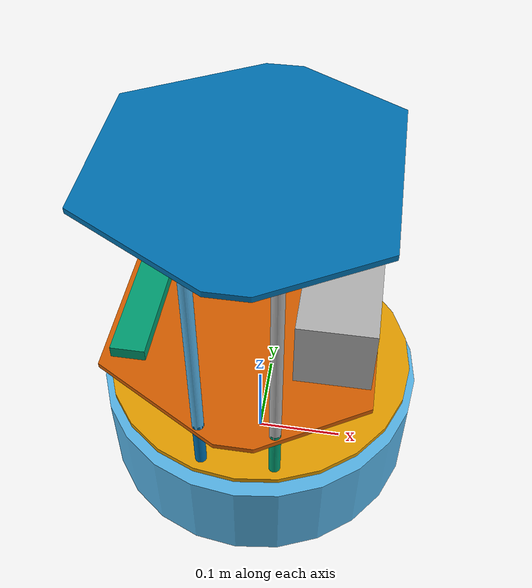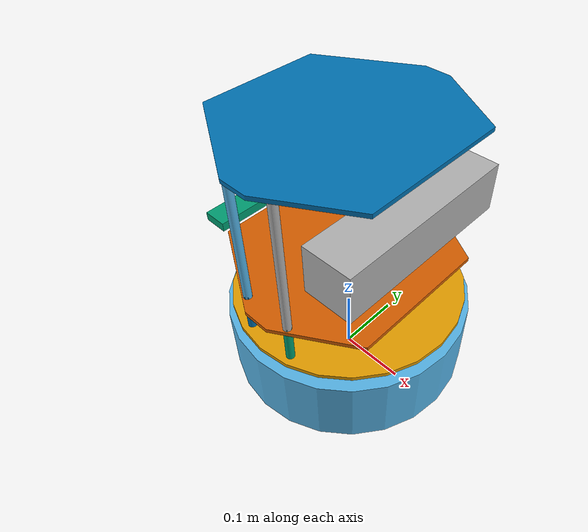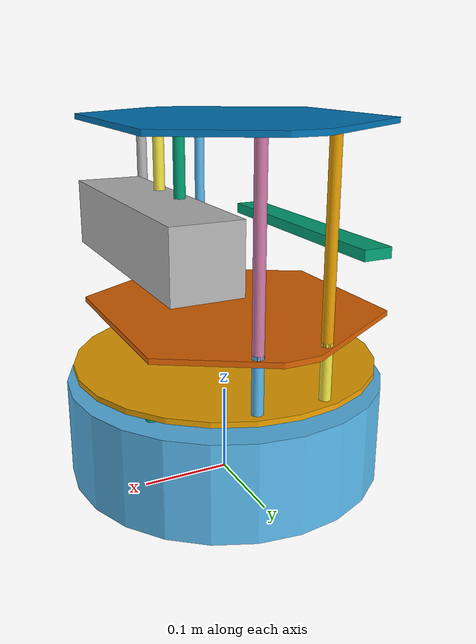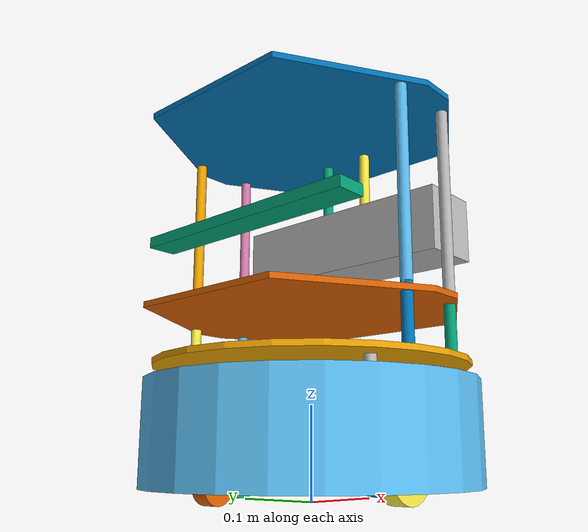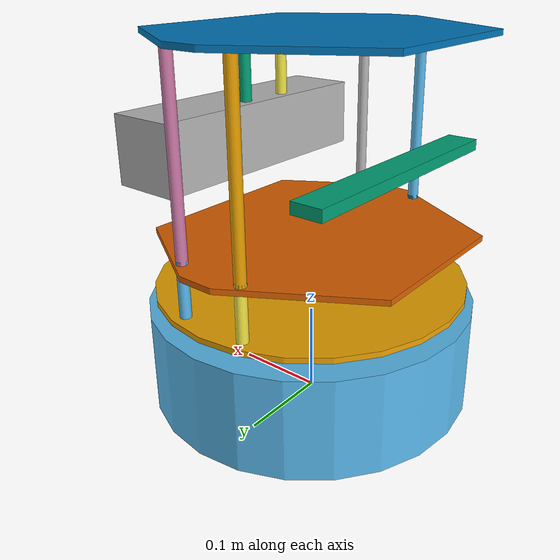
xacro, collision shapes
<?xml version="1.0"?>
<!--
    - Base      : kobuki
    - Stacks    : hexagons
    - 3d Sensor : kinect
-->
<robot name="turtlebot" xmlns:xacro="http://ros.org/wiki/xacro">

  <xacro:include filename="$(find chris_ros_turtlebot2)/urdf/turtlebot_common_library.urdf.xacro" />
  <xacro:include filename="$(find chris_ros_turtlebot2)/urdf/kobuki.urdf.xacro" />
  <xacro:include filename="$(find chris_ros_turtlebot2)/urdf/stacks/hexagons.urdf.xacro"/>
  <xacro:include filename="$(find chris_ros_turtlebot2)/urdf/sensors/xtion_pro.urdf.xacro"/>

  <xacro:kobuki/>
  <xacro:stack_hexagons   parent="base_link"/>
  <xacro:sensor_xtion_pro parent="base_link" xtion_pro_cam_py="-0.0125"/>
</robot>

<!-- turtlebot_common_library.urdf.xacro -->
<!--
  The common turtlebot library of xacros for easy reference
 -->
<robot xmlns:xacro="http://ros.org/wiki/xacro">
  <!-- General -->
  <xacro:include filename="$(find chris_ros_turtlebot2)/urdf/common_properties.urdf.xacro"/>
  <xacro:include filename="$(find chris_ros_turtlebot2)/urdf/turtlebot_properties.urdf.xacro"/>
</robot>

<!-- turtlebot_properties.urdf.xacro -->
<robot xmlns:xacro="http://ros.org/wiki/xacro">
  <!--
    These properties must be observed by any machine
    that wants to be defined as a turtlebot. Refer
    to the REP for more details.

    http://www.ros.org/reps/rep-0119.html
   -->

	<xacro:property name="cam_px" value="0.087" />
	<xacro:property name="cam_pz" value="0.2870" />
	<xacro:property name="cam_or" value="${M_PI}" />
	<xacro:property name="cam_op" value="0" />
	<xacro:property name="cam_oy" value="0" />
</robot>

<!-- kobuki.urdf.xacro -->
<robot name="kobuki" xmlns:xacro="http://ros.org/wiki/xacro">
  <xacro:include filename="$(find chris_ros_turtlebot2)/urdf/common_properties.urdf.xacro"/>
  <xacro:include filename="$(find chris_ros_turtlebot2)/urdf/kobuki_gazebo.urdf.xacro"/>

  <!-- Kobuki -->
  <xacro:macro name="kobuki">
    <link name="base_footprint"/>
    <joint name="base_joint" type="fixed">
      <origin xyz="0 0 0.0102" rpy="0 0 0" />
      <parent link="base_footprint"/>
      <child link="base_link" />
    </joint>
    <link name="base_link">
      <visual>
        <geometry>
          <!-- new mesh -->
          <mesh filename="package://chris_ros_turtlebot2/models/meshes/main_body.dae" />
        </geometry>
        <origin xyz="0.001 0 0.05199" rpy="0 0 0"/>
      </visual>
      <collision name="base">
        <geometry>
          <cylinder length="0.10938" radius="0.178"/>
        </geometry>
        <origin xyz="0.0 0 0.05949" rpy="0 0 0"/>
      </collision>
      <inertial>
        <!-- COM experimentally determined -->
        <origin xyz="0.01 0 0"/>
        <mass value="2.4"/> <!-- 2.4/2.6 kg for small/big battery pack -->
        <inertia ixx="0.019995" ixy="0.0" ixz="0.0"
                 iyy="0.019995" iyz="0.0"
                 izz="0.03675" />
      </inertial>
    </link>

    <joint name="wheel_left_joint" type="continuous">
      <parent link="base_link"/>
      <child link="wheel_left_link"/>
      <origin xyz="0.0 ${0.23/2} 0.0250" rpy="${-M_PI/2} 0 0"/>
      <axis xyz="0 0 1"/>
    </joint>
    <link name="wheel_left_link">
      <visual>
        <geometry>
          <mesh filename="package://chris_ros_turtlebot2/models/meshes/wheel.dae"/>
        </geometry>
        <origin xyz="0 0 0" rpy="0 0 0"/>
      </visual>
      <collision>
        <geometry>
          <cylinder length="0.0206" radius="0.035"/>
        </geometry>
        <origin rpy="0 0 0" xyz="0 0 0"/>
      </collision>
      <inertial>
        <mass value="0.01" />
        <origin xyz="0 0 0" />
        <inertia ixx="0.001" ixy="0.0" ixz="0.0"
                 iyy="0.001" iyz="0.0"
                 izz="0.001" />
      </inertial>
    </link>

    <joint name="wheel_right_joint" type="continuous">
      <parent link="base_link"/>
      <child link="wheel_right_link"/>
      <origin xyz="0.0 -${0.23/2} 0.0250" rpy="${-M_PI/2} 0 0"/>
      <axis xyz="0 0 1"/>
    </joint>
    <link name="wheel_right_link">
      <visual>
        <geometry>
          <mesh filename="package://chris_ros_turtlebot2/models/meshes/wheel.dae"/>
        </geometry>
        <origin xyz="0 0 0" rpy="0 0 0"/>
      </visual>
      <collision>
        <geometry>
          <cylinder length="0.0206" radius="0.035"/>
        </geometry>
        <origin rpy="0 0 0" xyz="0 0 0"/>
      </collision>
      <inertial>
        <mass value="0.01" />
        <origin xyz="0 0 0" />
        <inertia ixx="0.001" ixy="0.0" ixz="0.0"
                 iyy="0.001" iyz="0.0"
                 izz="0.001" />
      </inertial>
    </link>

    <joint name="caster_front_joint" type="fixed">
      <parent link="base_link"/>
      <child link="caster_front_link"/>
      <origin xyz="0.115 0.0 0.007" rpy="${-M_PI/2} 0 0"/>
    </joint>
    <link name="caster_front_link">
      <collision>
        <geometry>
          <cylinder length="0.0176" radius="0.017"/>
        </geometry>
        <origin rpy="0 0 0" xyz="0 0 0"/>
      </collision>
      <inertial>
        <mass value="0.01" />
        <origin xyz="0 0 0" />
        <inertia ixx="0.001" ixy="0.0" ixz="0.0"
                 iyy="0.001" iyz="0.0"
                 izz="0.001" />
      </inertial>
    </link>

    <joint name="caster_back_joint" type="fixed">
      <parent link="base_link"/>
      <child link="caster_back_link"/>
      <origin xyz="-0.135 0.0 0.009" rpy="${-M_PI/2} 0 0"/>
    </joint>
    <link name="caster_back_link">
      <collision>
        <geometry>
          <cylinder length="0.0176" radius="0.017"/>
        </geometry>
        <origin rpy="0 0 0" xyz="0 0 0"/>
      </collision>
      <inertial>
        <mass value="0.01" />
        <origin xyz="0 0 0" />
        <inertia ixx="0.001" ixy="0.0" ixz="0.0"
                 iyy="0.001" iyz="0.0"
                 izz="0.001" />
      </inertial>
    </link>

    <!-- Kobuki sensors -->
    <joint name="gyro_joint" type="fixed">
      <axis xyz="0 1 0"/>
      <origin xyz="0.056 0.062 0.0202" rpy="0 0 0"/>
      <parent link="base_link"/>
      <child link="gyro_link"/>
    </joint>
    <link name="gyro_link">
      <inertial>
        <mass value="0.001"/>
        <origin xyz="0 0 0" rpy="0 0 0"/>
        <inertia ixx="0.0001" ixy="0" ixz="0"
                 iyy="0.000001" iyz="0"
                 izz="0.0001"/>
      </inertial>
    </link>

    <joint name="cliff_sensor_left_joint" type="fixed">
      <origin xyz="0.08734 0.13601 0.0214" rpy="0 ${M_PI/2} 0" />
      <parent link="base_link"/>
      <child link="cliff_sensor_left_link" />
    </joint>
    <link name="cliff_sensor_left_link">
      <inertial>
        <mass value="0.0001" />
        <origin xyz="0 0 0" />
        <inertia ixx="0.0001" ixy="0.0" ixz="0.0"
                 iyy="0.0001" iyz="0.0"
                 izz="0.0001" />
      </inertial>
    </link>

    <joint name="cliff_sensor_right_joint" type="fixed">
      <origin xyz="0.085 -0.13601 0.0214" rpy="0 ${M_PI/2} 0" />
      <parent link="base_link"/>
      <child link="cliff_sensor_right_link" />
    </joint>
    <link name="cliff_sensor_right_link">
      <inertial>
        <mass value="0.0001" />
        <origin xyz="0 0 0" />
        <inertia ixx="0.0001" ixy="0.0" ixz="0.0"
                 iyy="0.0001" iyz="0.0"
                 izz="0.0001" />
      </inertial>
    </link>

    <joint name="cliff_sensor_front_joint" type="fixed">
      <origin xyz="0.156 0.00 0.0214" rpy="0 ${M_PI/2} 0" />
      <parent link="base_link"/>
      <child link="cliff_sensor_front_link" />
    </joint>
    <link name="cliff_sensor_front_link">
      <inertial>
        <mass value="0.0001" />
        <origin xyz="0 0 0" />
        <inertia ixx="0.0001" ixy="0.0" ixz="0.0"
                 iyy="0.0001" iyz="0.0"
                 izz="0.0001" />
      </inertial>
    </link>

    <!-- Kobuki Gazebo simulation details -->
    <xacro:kobuki_sim/>

  </xacro:macro>
</robot>

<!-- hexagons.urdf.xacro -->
<!--
  Hexagon stacks
 -->
<robot name="stack_hexagons" xmlns:xacro="http://ros.org/wiki/xacro">
  <xacro:include filename="$(find chris_ros_turtlebot2)/urdf/common_properties.urdf.xacro"/>

  <!-- Xacro properties -->
  <xacro:property name="M_SCALE" value="0.001"/>

  <!-- Xacro macros -->
  <!-- Pole macros -->
  <xacro:macro name="stack_bottom_pole" params="parent number x_loc y_loc z_loc roll=0.0 pitch=0.0 yaw=0.0">
    <joint name="pole_bottom_${number}_joint" type="fixed">
      <origin xyz="${x_loc} ${y_loc} ${z_loc}" rpy="${roll} ${pitch} ${yaw}"/>
      <parent link="${parent}"/>
      <child link="pole_bottom_${number}_link"/>
    </joint>
    <link name="pole_bottom_${number}_link">
      <visual>
        <origin xyz="0 0 0" rpy="0 0 0"/>
        <geometry>
          <mesh filename="package://chris_ros_turtlebot2/models/meshes/stacks/hexagons/pole_bottom.dae"/>
        </geometry>
      </visual>
      <collision>
        <origin xyz="0 0 0" rpy="0 0 0"/>
        <geometry>
          <cylinder length="0.0492" radius="0.006"/>
        </geometry>
      </collision>
      <inertial>
        <mass value="0.008"/>
        <origin xyz="0 0 0" rpy="0 0 0"/>
        <inertia ixx="0.000001686" ixy="0.0" ixz="0.0"
                 iyy="0.000001686" iyz="0.0"
                 izz="0.000000144"/>
      </inertial>
    </link>
  </xacro:macro>

  <xacro:macro name="stack_middle_pole" params="parent number x_loc y_loc z_loc roll=0.0 pitch=0.0 yaw=0.0">
    <joint name="pole_middle_${number}_joint" type="fixed">
      <origin xyz="${x_loc} ${y_loc} ${z_loc}" rpy="${roll} ${pitch} ${yaw}" />
      <parent link="${parent}"/>
      <child link="pole_middle_${number}_link"/>
    </joint>
    <link name="pole_middle_${number}_link">
      <visual>
        <origin xyz="0 0 0" rpy="0 ${M_PI} 0"/>
        <geometry>
          <mesh filename="package://chris_ros_turtlebot2/models/meshes/stacks/hexagons/pole_middle.dae"/>
        </geometry>
      </visual>
      <collision>
        <origin xyz="0 0 0" rpy="0 0 0"/>
        <geometry>
          <cylinder length="0.0608" radius="0.006"/>
        </geometry>
      </collision>
      <inertial>
        <mass value="0.012"/>
        <origin xyz="0 0 0"/>
        <inertia ixx="0.000003805" ixy="0.0" ixz="0.0"
                 iyy="0.000003805" iyz="0.0"
                 izz="0.000000216"/>
      </inertial>
    </link>
  </xacro:macro>

  <xacro:macro name="stack_top_pole" params="parent number x_loc y_loc z_loc roll=0.0 pitch=0.0 yaw=0.0">
    <joint name="pole_top_${number}_joint" type="fixed">
      <origin xyz="${x_loc} ${y_loc} ${z_loc}" rpy="${roll} ${pitch} ${yaw}"/>
      <parent link="${parent}"/>
      <child link="pole_top_${number}_link"/>
    </joint>
    <link name="pole_top_${number}_link">
      <visual>
        <origin xyz=" 0 0 0" rpy="0 0 0"/>
        <geometry>
          <mesh filename="package://chris_ros_turtlebot2/models/meshes/stacks/hexagons/pole_top.dae"/>
        </geometry>
      </visual>
      <collision>
        <origin xyz="0 0 0" rpy="0 0 0"/>
        <geometry>
          <cylinder length="0.2032" radius="0.006"/>
        </geometry>
      </collision>
      <inertial>
        <mass value="0.060"/>
        <origin xyz="0 0 0"/>
        <inertia ixx="0.000206991" ixy="0.0" ixz="0.0"
                 iyy="0.000206991" iyz="0.0"
                 izz="0.000001080"/>
      </inertial>
    </link>
  </xacro:macro>

  <xacro:macro name="stack_3d_sensor_pole" params="parent number x_loc y_loc z_loc roll=0.0 pitch=0.0 yaw=0.0">
    <joint name="pole_kinect_${number}_joint" type="fixed">
      <origin xyz="${x_loc} ${y_loc} ${z_loc}" rpy="${roll} ${pitch} ${yaw}"/>
      <parent link="${parent}"/>
      <child link="pole_kinect_${number}_link"/>
    </joint>
    <link name="pole_kinect_${number}_link">
      <visual>
        <origin xyz="0 0 0" rpy="0 0 0"/>
        <geometry>
          <mesh filename="package://chris_ros_turtlebot2/models/meshes/stacks/hexagons/pole_kinect.dae" />
        </geometry>
      </visual>
      <collision>
        <origin xyz="0 0 0" rpy="0 0 0"/>
        <geometry>
          <cylinder length="0.0936" radius="0.006"/>
        </geometry>
      </collision>
      <inertial>
        <mass value="0.020"/>
        <origin xyz="0 0 0"/>
        <inertia ixx="0.000014782" ixy="0.0" ixz="0.0"
                 iyy="0.000014782" iyz="0.0"
                 izz="0.000000360"/>
      </inertial>
    </link>
  </xacro:macro>

  <xacro:macro name="stack_hexagons" params="parent">
    <xacro:stack_bottom_pole parent="${parent}" number="0" x_loc= "0.120" y_loc= "0.082" z_loc="0.1028"/>
    <xacro:stack_bottom_pole parent="${parent}" number="1" x_loc= "0.055" y_loc= "0.120" z_loc="0.1028"/>
    <xacro:stack_bottom_pole parent="${parent}" number="2" x_loc="-0.055" y_loc= "0.120" z_loc="0.1028"/>
    <xacro:stack_bottom_pole parent="${parent}" number="3" x_loc= "0.120" y_loc="-0.082" z_loc="0.1028"/>
    <xacro:stack_bottom_pole parent="${parent}" number="4" x_loc= "0.055" y_loc="-0.120" z_loc="0.1028"/>
    <xacro:stack_bottom_pole parent="${parent}" number="5" x_loc="-0.055" y_loc="-0.120" z_loc="0.1028"/>

    <joint name="plate_bottom_joint" type="fixed">
      <origin xyz="0.02364 0.0 0.1306" rpy="0 0 0"/>
      <parent link="${parent}"/>
      <child link="plate_bottom_link"/>
    </joint>
    <link name="plate_bottom_link">
      <visual>
        <origin xyz="0 0 0" rpy="0 0 0"/>
        <geometry>
          <mesh filename="package://chris_ros_turtlebot2/models/meshes/stacks/hexagons/plate_bottom.dae"/>
        </geometry>
      </visual>
      <collision>
        <origin xyz="-0.02364 0 0" rpy="0 0 0"/>
        <geometry>
          <cylinder length="0.006" radius="0.170"/>
        </geometry>
      </collision>
      <inertial>
        <mass value="0.520" />
        <origin xyz="0 0 0" />
        <inertia ixx="0.003328" ixy="0.0" ixz="0.0"
                 iyy="0.003328" iyz="0.0"
                 izz="0.006656" />
      </inertial>
    </link>

    <xacro:stack_middle_pole parent="${parent}" number="0" x_loc= "0.0381" y_loc= "0.1505" z_loc="0.1640"/>
    <xacro:stack_middle_pole parent="${parent}" number="1" x_loc= "0.0381" y_loc="-0.1505" z_loc="0.1640"/>
    <xacro:stack_middle_pole parent="${parent}" number="2" x_loc="-0.0381" y_loc= "0.1505" z_loc="0.1640"/>
    <xacro:stack_middle_pole parent="${parent}" number="3" x_loc="-0.0381" y_loc="-0.1505" z_loc="0.1640"/>

    <joint name="plate_middle_joint" type="fixed">
      <origin xyz="-0.01364 0.0 0.1874" rpy="0 0 0"/>
      <parent link="${parent}"/>
      <child link="plate_middle_link"/>
    </joint>
    <link name="plate_middle_link">
      <visual>
        <origin xyz="0 0 0" rpy="0 0 0"/>
        <geometry>
          <mesh filename="package://chris_ros_turtlebot2/models/meshes/stacks/hexagons/plate_middle.dae"/>
        </geometry>
      </visual>
      <collision>
        <origin xyz="0.01364 0.0 0.0" rpy="0 0 0"/>
        <geometry>
          <mesh filename="package://chris_ros_turtlebot2/models/meshes/stacks/hexagons/plate_simple.stl"
                scale="${M_SCALE} ${M_SCALE} ${M_SCALE}"/>
        </geometry>
      </collision>
      <inertial>
        <mass value="0.520" />
        <origin xyz="0 0 0" />
        <inertia ixx="0.003328" ixy="0.0" ixz="0.0"
                 iyy="0.003328" iyz="0.0"
                 izz="0.006656" />
      </inertial>
    </link>

    <xacro:stack_top_pole parent="${parent}" number="0" x_loc= "0.0381" y_loc= "0.1505" z_loc="0.2920"/>
    <xacro:stack_top_pole parent="${parent}" number="1" x_loc= "0.0381" y_loc="-0.1505" z_loc="0.2920"/>
    <xacro:stack_top_pole parent="${parent}" number="2" x_loc="-0.0381" y_loc= "0.1505" z_loc="0.2920"/>
    <xacro:stack_top_pole parent="${parent}" number="3" x_loc="-0.0381" y_loc="-0.1505" z_loc="0.2920"/>
    <xacro:stack_3d_sensor_pole parent="${parent}" number="0" x_loc="0.0634" y_loc= "0.028" z_loc="0.3420"/>
    <xacro:stack_3d_sensor_pole parent="${parent}" number="1" x_loc="0.0634" y_loc="-0.028" z_loc="0.3420"/>

    <joint name="plate_top_joint" type="fixed">
      <origin xyz="-0.01364 0.0  0.3966" rpy="0 0 0"/>
      <parent link="${parent}"/>
      <child link="plate_top_link"/>
    </joint>
    <link name="plate_top_link">
      <visual>
        <origin xyz="0 0 0" rpy="0 0 0"/>
        <geometry>
          <mesh filename="package://chris_ros_turtlebot2/models/meshes/stacks/hexagons/plate_top.dae"/>
        </geometry>
      </visual>
      <collision>
        <origin xyz="0.01364 0 0" rpy="0 0 0"/>
        <geometry>
          <mesh filename="package://chris_ros_turtlebot2/models/meshes/stacks/hexagons/plate_simple.stl"
                scale="${M_SCALE} ${M_SCALE} ${M_SCALE}"/>
        </geometry>
      </collision>
      <inertial>
        <mass value="0.520"/>
        <origin xyz="0 0 0"/>
        <inertia ixx="0.003328" ixy="0.0" ixz="0.0"
                 iyy="0.003328" iyz="0.0"
                 izz="0.006656" />
      </inertial>
    </link>
  </xacro:macro>
</robot>

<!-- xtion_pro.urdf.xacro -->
<robot name="sensor_xtion_pro" xmlns:xacro="http://ros.org/wiki/xacro">
  <xacro:include filename="$(find chris_ros_turtlebot2)/urdf/turtlebot_gazebo.urdf.xacro"/>
  <xacro:include filename="$(find chris_ros_turtlebot2)/urdf/turtlebot_properties.urdf.xacro"/>

  <!-- Xacro properties -->
  <xacro:property name="xtion_pro_depth_rel_rgb_py" value="0.0270" />
  <xacro:property name="xtion_pro_cam_rel_rgb_py"   value="-0.0220" />

  <!-- Parameterised in part by the values in turtlebot_properties.urdf.xacro -->
  <!-- xtion_pro_cam_py allows for a camera displaced so the depth optical frame aligns with robot center -->
  <xacro:macro name="sensor_xtion_pro" params="parent xtion_pro_cam_py">
    <joint name="camera_rgb_joint" type="fixed">
      <origin xyz="${cam_px} ${xtion_pro_cam_py} ${cam_pz}"
              rpy="${cam_or} ${cam_op} ${cam_oy}"/>
      <parent link="${parent}"/>
      <child link="camera_rgb_frame" />
    </joint>
    <link name="camera_rgb_frame"/>

    <joint name="camera_rgb_optical_joint" type="fixed">
      <origin xyz="0 0 0" rpy="${-M_PI/2} 0 ${-M_PI/2}" />
      <parent link="camera_rgb_frame" />
      <child link="camera_rgb_optical_frame" />
    </joint>
    <link name="camera_rgb_optical_frame"/>

    <joint name="camera_joint" type="fixed">
      <origin xyz="0 ${xtion_pro_cam_rel_rgb_py} 0"
              rpy="0 0 0"/>
      <parent link="camera_rgb_frame"/>
      <child link="camera_link"/>
    </joint>
    <link name="camera_link">
      <visual>
        <origin xyz="-0.015 0.0035 0.004" rpy="0 0 0"/>
        <geometry>
          <mesh filename="package://chris_ros_turtlebot2/models/meshes/sensors/xtion_pro_camera.dae"/>
        </geometry>
      </visual>
      <collision>
        <origin xyz="0.0 0.0 0.0" rpy="0 0 0" />
        <geometry>
        <box size="0.0730 0.2760 0.0720"/>
      </geometry>
      </collision>
      <inertial>
        <mass value="0.170" />
        <origin xyz="0 0 0" />
        <inertia ixx="0.001152600" ixy="0.0" ixz="0.0"
                 iyy="0.000148934" iyz="0.0"
                 izz="0.001154654" />
      </inertial>
    </link>

    <joint name="camera_depth_joint" type="fixed">
      <origin xyz="0 ${xtion_pro_depth_rel_rgb_py} 0" rpy="0 0 0" />
      <parent link="camera_rgb_frame" />
      <child link="camera_depth_frame" />
    </joint>
    <link name="camera_depth_frame"/>

    <joint name="camera_depth_optical_joint" type="fixed">
      <origin xyz="0 0 0" rpy="${-M_PI/2} 0 ${-M_PI/2}" />
      <parent link="camera_depth_frame" />
      <child link="camera_depth_optical_frame" />
    </joint>
    <link name="camera_depth_optical_frame"/>

    <!-- RGBD sensor for simulation, same as Kinect -->
    <xacro:turtlebot_sim_3dsensor/>

    <!-- Asus mount -->
    <joint name="mount_xtion_pro_joint" type="fixed">
      <origin xyz="-0.1024 0.0 0.272" rpy="0 0 0"/>
      <parent link="${parent}"/>
      <child link="mount_xtion_pro_link"/>
    </joint>
    <link name="mount_xtion_pro_link">
      <visual>
        <origin xyz="0 0 0" rpy="${-M_PI/2} 0 0"/>
        <geometry>
          <mesh filename="package://chris_ros_turtlebot2/models/meshes/sensors/xtion_pro_stack.dae"/>
        </geometry>
      </visual>
      <collision>
        <origin xyz="0.0 0.0 0.0" rpy="0 0 0" />
        <geometry>
        <box size="0.0330 0.2760 0.0120"/>
      </geometry>
      </collision>
      <inertial>
        <mass value="0.170" />
        <origin xyz="0 0 0" />
        <inertia ixx="0.001152600" ixy="0.0" ixz="0.0"
                 iyy="0.000148934" iyz="0.0"
                 izz="0.001154654" />
      </inertial>
    </link>
  </xacro:macro>
</robot>
